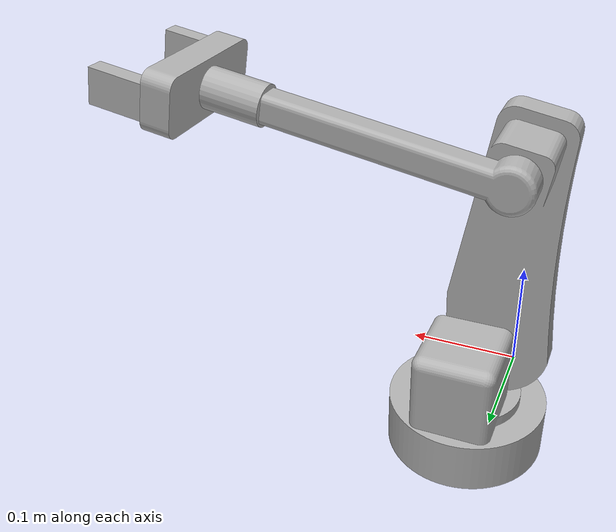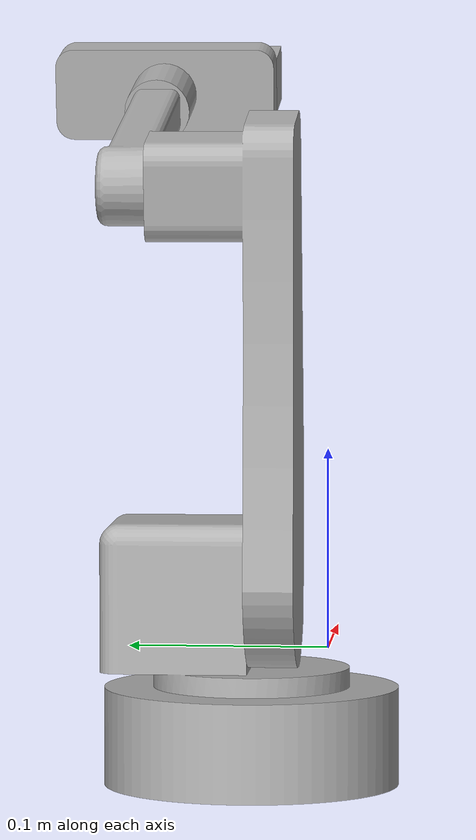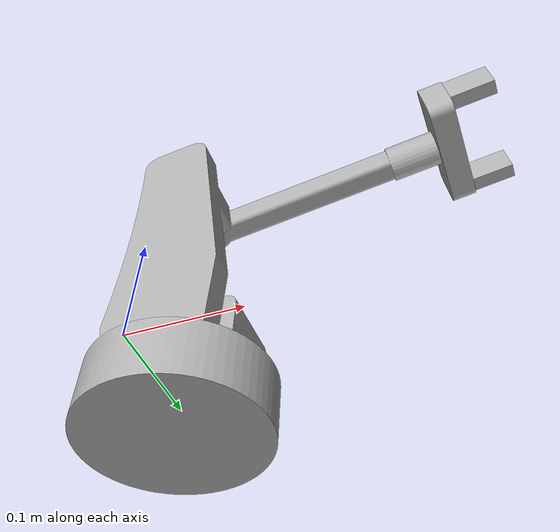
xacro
<?xml version="1.0" ?>
<robot name="sample" xmlns:xacro="http://www.ros.org/wiki/xacro">

<xacro:include filename="$(find sample_description)/urdf/materials.xacro" />
<xacro:include filename="$(find sample_description)/urdf/sample.trans" />
<xacro:include filename="$(find sample_description)/urdf/sample.gazebo" />
<link name="base_link">
  <inertial>
    <origin rpy="0 0 0" xyz="0.03340161632196768 0.040717102989105886 -0.04911871931107357"/>
    <mass value="0.48066367599923826"/>
    <inertia ixx="0.000776" ixy="-0.0" ixz="0.0" iyy="0.000776" iyz="-0.0" izz="0.001352"/>
  </inertial>
  <visual>
    <origin rpy="0 0 0" xyz="0 0 0"/>
    <geometry>
      <mesh filename="package://sample_description/meshes/base_link.stl" scale="0.001 0.001 0.001"/>
    </geometry>
    <material name="silver"/>
  </visual>
  <collision>
    <origin rpy="0 0 0" xyz="0 0 0"/>
    <geometry>
      <mesh filename="package://sample_description/meshes/base_link.stl" scale="0.001 0.001 0.001"/>
    </geometry>
  </collision>
</link>

<link name="shoulder_link_1">
  <inertial>
    <origin rpy="0 0 0" xyz="-3.836780323243638e-07 0.03120099980989846 0.0404041459631956"/>
    <mass value="0.6897828784531455"/>
    <inertia ixx="0.000895" ixy="0.0" ixz="-0.0" iyy="0.000766" iyz="-0.000142" izz="0.000797"/>
  </inertial>
  <visual>
    <origin rpy="0 0 0" xyz="-0.033402 -0.040717 0.024119"/>
    <geometry>
      <mesh filename="package://sample_description/meshes/shoulder_link_1.stl" scale="0.001 0.001 0.001"/>
    </geometry>
    <material name="silver"/>
  </visual>
  <collision>
    <origin rpy="0 0 0" xyz="-0.033402 -0.040717 0.024119"/>
    <geometry>
      <mesh filename="package://sample_description/meshes/shoulder_link_1.stl" scale="0.001 0.001 0.001"/>
    </geometry>
  </collision>
</link>

<link name="arm_link_1">
  <inertial>
    <origin rpy="0 0 0" xyz="-0.025309149355808427 -0.005771114300507106 0.1172804906429399"/>
    <mass value="0.9418000765257055"/>
    <inertia ixx="0.006505" ixy="3.8e-05" ixz="0.000366" iyy="0.00673" iyz="-0.000573" izz="0.000766"/>
  </inertial>
  <visual>
    <origin rpy="0 0 0" xyz="-0.033402 -0.040717 -0.023381"/>
    <geometry>
      <mesh filename="package://sample_description/meshes/arm_link_1.stl" scale="0.001 0.001 0.001"/>
    </geometry>
    <material name="silver"/>
  </visual>
  <collision>
    <origin rpy="0 0 0" xyz="-0.033402 -0.040717 -0.023381"/>
    <geometry>
      <mesh filename="package://sample_description/meshes/arm_link_1.stl" scale="0.001 0.001 0.001"/>
    </geometry>
  </collision>
</link>

<link name="elbow_link_1">
  <inertial>
    <origin rpy="0 0 0" xyz="-0.020903062610562677 0.012468729906830511 0.1191306887514276"/>
    <mass value="0.2638036919050309"/>
    <inertia ixx="0.001781" ixy="0.0" ixz="0.000307" iyy="0.001837" iyz="-1e-06" izz="8.6e-05"/>
  </inertial>
  <visual>
    <origin rpy="0 0 0" xyz="-0.002033 -0.090717 -0.231085"/>
    <geometry>
      <mesh filename="package://sample_description/meshes/elbow_link_1.stl" scale="0.001 0.001 0.001"/>
    </geometry>
    <material name="silver"/>
  </visual>
  <collision>
    <origin rpy="0 0 0" xyz="-0.002033 -0.090717 -0.231085"/>
    <geometry>
      <mesh filename="package://sample_description/meshes/elbow_link_1.stl" scale="0.001 0.001 0.001"/>
    </geometry>
  </collision>
</link>

<link name="eef_1">
  <inertial>
    <origin rpy="0 0 0" xyz="-0.002160386550833289 1.0298910591011179e-07 0.012311491752067194"/>
    <mass value="0.20699557428756424"/>
    <inertia ixx="0.000143" ixy="9.7e-05" ixz="-2.5e-05" iyy="0.000167" iyz="1.7e-05" izz="0.00028"/>
  </inertial>
  <visual>
    <origin rpy="0 0 0" xyz="0.041173 -0.103217 -0.477324"/>
    <geometry>
      <mesh filename="package://sample_description/meshes/eef_1.stl" scale="0.001 0.001 0.001"/>
    </geometry>
    <material name="silver"/>
  </visual>
  <collision>
    <origin rpy="0 0 0" xyz="0.041173 -0.103217 -0.477324"/>
    <geometry>
      <mesh filename="package://sample_description/meshes/eef_1.stl" scale="0.001 0.001 0.001"/>
    </geometry>
  </collision>
</link>

<link name="left_claw_1">
  <inertial>
    <origin rpy="0 0 0" xyz="-0.01904488870976959 0.013375111241066981 0.01950164465678328"/>
    <mass value="0.0188325"/>
    <inertia ixx="4e-06" ixy="-1e-06" ixz="0.0" iyy="4e-06" iyz="-0.0" izz="2e-06"/>
  </inertial>
  <visual>
    <origin rpy="0 0 0" xyz="0.000891 -0.063855 -0.509774"/>
    <geometry>
      <mesh filename="package://sample_description/meshes/left_claw_1.stl" scale="0.001 0.001 0.001"/>
    </geometry>
    <material name="silver"/>
  </visual>
  <collision>
    <origin rpy="0 0 0" xyz="0.000891 -0.063855 -0.509774"/>
    <geometry>
      <mesh filename="package://sample_description/meshes/left_claw_1.stl" scale="0.001 0.001 0.001"/>
    </geometry>
  </collision>
</link>

<link name="right_claw_1">
  <inertial>
    <origin rpy="0 0 0" xyz="0.011267372542395543 -0.013374905262855008 0.024821018337491008"/>
    <mass value="0.0188325"/>
    <inertia ixx="4e-06" ixy="-1e-06" ixz="0.0" iyy="4e-06" iyz="-0.0" izz="2e-06"/>
  </inertial>
  <visual>
    <origin rpy="0 0 0" xyz="0.090096 -0.142579 -0.494121"/>
    <geometry>
      <mesh filename="package://sample_description/meshes/right_claw_1.stl" scale="0.001 0.001 0.001"/>
    </geometry>
    <material name="silver"/>
  </visual>
  <collision>
    <origin rpy="0 0 0" xyz="0.090096 -0.142579 -0.494121"/>
    <geometry>
      <mesh filename="package://sample_description/meshes/right_claw_1.stl" scale="0.001 0.001 0.001"/>
    </geometry>
  </collision>
</link>

<joint name="base_twist" type="continuous">
  <origin rpy="0 0 0" xyz="0.033402 0.040717 -0.024119"/>
  <parent link="base_link"/>
  <child link="shoulder_link_1"/>
  <axis xyz="0.0 0.0 1.0"/>
</joint>

<joint name="arm_rev" type="revolute">
  <origin rpy="0 0 0" xyz="0.0 0.0 0.0475"/>
  <parent link="shoulder_link_1"/>
  <child link="arm_link_1"/>
  <axis xyz="0.0 -1.0 0.0"/>
  <limit effort="100" lower="-0.174533" upper="1.570796" velocity="100"/>
</joint>

<joint name="elbow_rev" type="revolute">
  <origin rpy="0 0 0" xyz="-0.031369 0.05 0.207704"/>
  <parent link="arm_link_1"/>
  <child link="elbow_link_1"/>
  <axis xyz="-0.0 1.0 0.0"/>
  <limit effort="100" lower="-2.792527" upper="2.792527" velocity="100"/>
</joint>

<joint name="wrist_twist" type="continuous">
  <origin rpy="0 0 0" xyz="-0.043206 0.0125 0.246239"/>
  <parent link="elbow_link_1"/>
  <child link="eef_1"/>
  <axis xyz="-0.172825 -0.0 0.984953"/>
</joint>

<joint name="left_claw_sliding" type="prismatic">
  <origin rpy="0 0 0" xyz="0.040282 -0.039362 0.03245"/>
  <parent link="eef_1"/>
  <child link="left_claw_1"/>
  <axis xyz="-0.74337 0.656039 -0.130436"/>
  <limit effort="100" lower="0.0" upper="0.05" velocity="100"/>
</joint>

<joint name="right_claw_sliding" type="prismatic">
  <origin rpy="0 0 0" xyz="-0.048923 0.039362 0.016797"/>
  <parent link="eef_1"/>
  <child link="right_claw_1"/>
  <axis xyz="0.74337 -0.656039 0.130436"/>
  <limit effort="100" lower="0.0" upper="0.05" velocity="100"/>
</joint>

</robot>

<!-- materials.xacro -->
<robot name="sample" xmlns:xacro="http://www.ros.org/wiki/xacro" >

<material name="silver">
  <color rgba="0.700 0.700 0.700 1.000"/>
</material>

</robot>

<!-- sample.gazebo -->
<robot name="sample" xmlns:xacro="http://www.ros.org/wiki/xacro" >

<xacro:property name="body_color" value="Gazebo/Silver" />

<gazebo>
  <plugin filename="libgazebo_ros_control.so" name="control"/>
</gazebo>
<gazebo reference="base_link">
  <material>${body_color}</material>
  <mu1>0.2</mu1>
  <mu2>0.2</mu2>
  <selfCollide>true</selfCollide>
  <gravity>true</gravity>
</gazebo>

<gazebo reference="shoulder_link_1">
  <material>${body_color}</material>
  <mu1>0.2</mu1>
  <mu2>0.2</mu2>
  <selfCollide>true</selfCollide>
</gazebo>

<gazebo reference="arm_link_1">
  <material>${body_color}</material>
  <mu1>0.2</mu1>
  <mu2>0.2</mu2>
  <selfCollide>true</selfCollide>
</gazebo>

<gazebo reference="elbow_link_1">
  <material>${body_color}</material>
  <mu1>0.2</mu1>
  <mu2>0.2</mu2>
  <selfCollide>true</selfCollide>
</gazebo>

<gazebo reference="eef_1">
  <material>${body_color}</material>
  <mu1>0.2</mu1>
  <mu2>0.2</mu2>
  <selfCollide>true</selfCollide>
</gazebo>

<gazebo reference="left_claw_1">
  <material>${body_color}</material>
  <mu1>0.2</mu1>
  <mu2>0.2</mu2>
  <selfCollide>true</selfCollide>
</gazebo>

<gazebo reference="right_claw_1">
  <material>${body_color}</material>
  <mu1>0.2</mu1>
  <mu2>0.2</mu2>
  <selfCollide>true</selfCollide>
</gazebo>

</robot>
